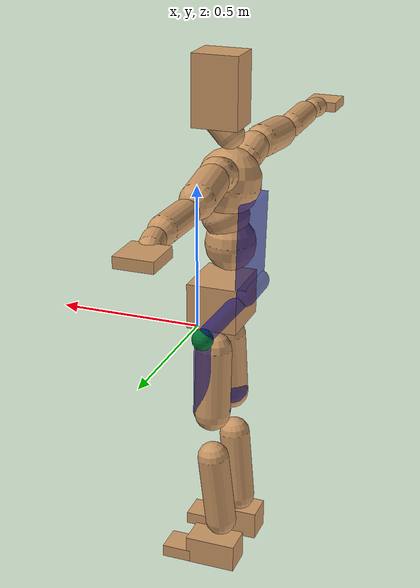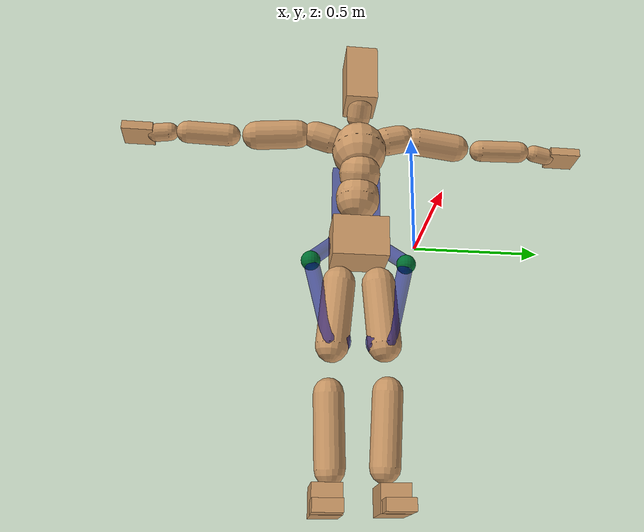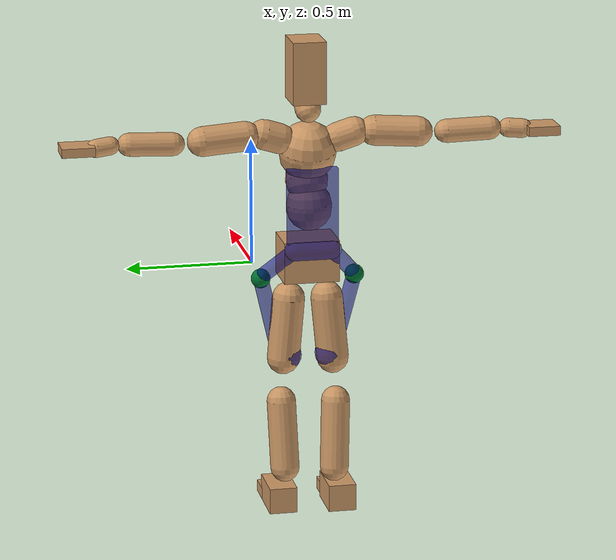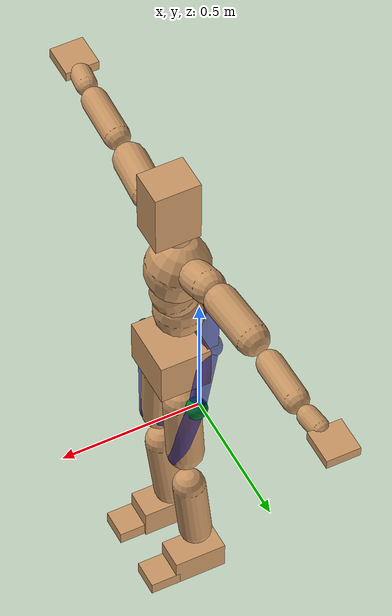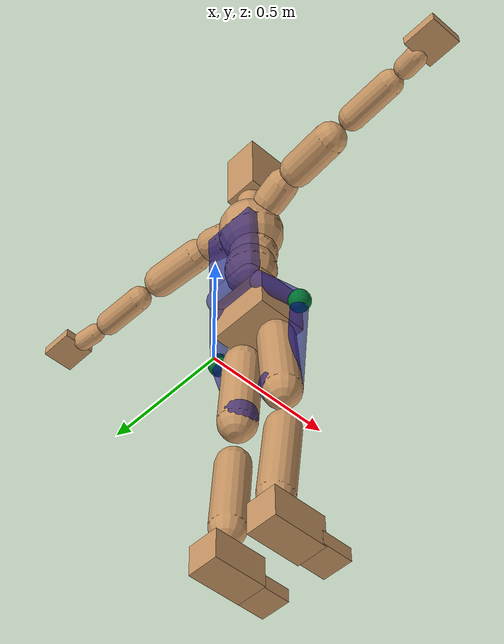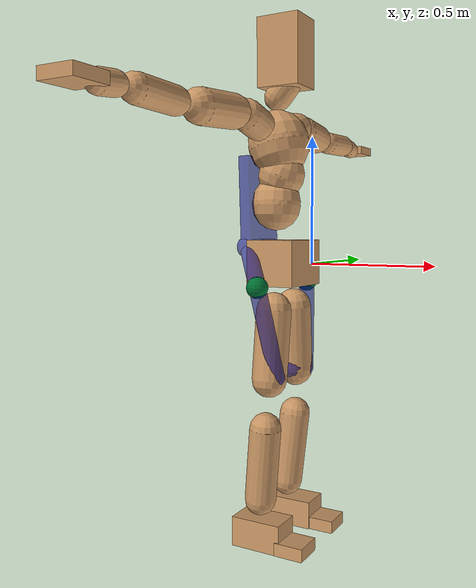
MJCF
<mujoco model="humanoid">
  <compiler coordinate="local" />
  <asset>
    <texture type="skybox" builtin="gradient" rgb1=".4 .5 .6" rgb2="0 0 0" width="100" height="100" />
    <texture builtin="flat" height="1278" mark="cross" markrgb="1 1 1" name="texgeom" random="0.01" rgb1="0.8 0.6 0.4" rgb2="0.8 0.6 0.4" type="cube" width="127" />
    <texture builtin="checker" height="100" name="texplane" rgb1="0 0 0" rgb2="0.8 0.8 0.8" type="2d" width="100" />
    <material name="MatPlane" reflectance="0.5" shininess="1" specular="1" texrepeat="60 60" texture="texplane" />
    <material name="geom" texture="texgeom" texuniform="true" />
  </asset>
  <worldbody>
    <light cutoff="100" diffuse="1 1 1" dir="-0 0 -1.3" directional="true" exponent="1" pos="0 0 1.3" specular=".1 .1 .1" />
    <body name="Pelvis" pos="-0.0018 -0.2233 0.0282">
      <geom type="box" pos="-0.0061 -0.0000 -0.0139" size="0.0919 0.1110 0.0831" quat="1.0000 0.0000 0.0000 0.0000" density="1000" conaffinity="1" condim="3" contype="7" margin="0.001" rgba="0.8 0.6 .4 1" />
      <body name="L_Hip" pos="-0.0041 0.0708 -0.0993">
        <joint name="L_Hip_x" type="hinge" pos="0 0 0" axis="1 0 0" stiffness="800" damping="80" armature="0.02" range="-180.0000 180.0000" limited="true" />
        <joint name="L_Hip_y" type="hinge" pos="0 0 0" axis="0 1 0" stiffness="800" damping="80" armature="0.02" range="-180.0000 180.0000" limited="true" />
        <joint name="L_Hip_z" type="hinge" pos="0 0 0" axis="0 0 1" stiffness="800" damping="80" armature="0.02" range="-180.0000 180.0000" limited="true" />
        <geom type="capsule" contype="1" conaffinity="1" density="2040.816327" fromto="-0.0010 0.0071 -0.0817 -0.0040 0.0284 -0.3271" size="0.0656" condim="3" margin="0.001" rgba="0.8 0.6 .4 1" />
        <body name="L_Knee" pos="-0.0028 0.0419 -0.4154">
          <joint name="L_Knee_x" type="hinge" pos="0 0 0" axis="1 0 0" stiffness="800" damping="80" armature="0.02" range="-180.0000 180.0000" limited="true" />
          <joint name="L_Knee_y" type="hinge" pos="0 0 0" axis="0 1 0" stiffness="800" damping="80" armature="0.02" range="-180.0000 180.0000" limited="true" />
          <joint name="L_Knee_z" type="hinge" pos="0 0 0" axis="0 0 1" stiffness="800" damping="80" armature="0.02" range="-180.0000 180.0000" limited="true" />
          <geom type="capsule" contype="1" conaffinity="1" density="1234.567901" fromto="-0.0095 -0.0029 -0.0904 -0.0384 -0.0116 -0.3616" size="0.0581" condim="3" margin="0.001" rgba="0.8 0.6 .4 1" />
          <body name="L_Ankle" pos="-0.0475 -0.0180 -0.4513">
            <joint name="L_Ankle_x" type="hinge" pos="0 0 0" axis="1 0 0" stiffness="800" damping="80" armature="0.02" range="-180.0000 180.0000" limited="true" />
            <joint name="L_Ankle_y" type="hinge" pos="0 0 0" axis="0 1 0" stiffness="800" damping="80" armature="0.02" range="-180.0000 180.0000" limited="true" />
            <joint name="L_Ankle_z" type="hinge" pos="0 0 0" axis="0 0 1" stiffness="800" damping="80" armature="0.02" range="-180.0000 180.0000" limited="true" />
            <geom type="box" pos="0.0269 0.0267 -0.0267" size="0.0944 0.0554 0.0519" quat="1.0000 0.0000 0.0000 0.0000" density="1000" conaffinity="1" condim="3" contype="7" margin="0.001" rgba="0.8 0.6 .4 1" />
            <body name="L_Toe" pos="0.1338 0.0323 -0.0615">
              <joint name="L_Toe_x" type="hinge" pos="0 0 0" axis="1 0 0" stiffness="500" damping="50" armature="0.02" range="-5.0000 5.0000" limited="true" />
              <joint name="L_Toe_y" type="hinge" pos="0 0 0" axis="0 1 0" stiffness="500" damping="50" armature="0.02" range="-5.0000 5.0000" limited="true" />
              <joint name="L_Toe_z" type="hinge" pos="0 0 0" axis="0 0 1" stiffness="500" damping="50" armature="0.02" range="-5.0000 5.0000" limited="true" />
              <geom type="box" pos="0.0275 -0.0033 0.0063" size="0.0550 0.0532 0.0228" quat="1.0000 0.0000 0.0000 0.0000" density="1000" conaffinity="1" condim="3" contype="7" margin="0.001" rgba="0.8 0.6 .4 1" />
            </body>
          </body>
        </body>
        <geom name="left_hip_motor" type="sphere" size="0.0385" pos="-0.000469 0.118289 0.005255" mass="0.53" contype="0" conaffinity="0" rgba="0.0 0.45 0.2 1" />
        <geom name="left_thigh_box" type="capsule" fromto="0.002551 0.111331 -0.023770 0.033895 0.039115 -0.325029" size="0.030" mass="0.1977" contype="0" conaffinity="0" rgba="0.0 0.0 0.55 0.55" />
        <geom name="left_hip_ring" type="sphere" pos="-0.007284 0.017379 -0.315218" size="0.061500" mass="0.0923" contype="0" conaffinity="0" rgba="0.0 0.0 0.55 0.55" />
      </body>
      <body name="R_Hip" pos="-0.0026 -0.0695 -0.0980">
        <joint name="R_Hip_x" type="hinge" pos="0 0 0" axis="1 0 0" stiffness="800" damping="80" armature="0.02" range="-180.0000 180.0000" limited="true" />
        <joint name="R_Hip_y" type="hinge" pos="0 0 0" axis="0 1 0" stiffness="800" damping="80" armature="0.02" range="-180.0000 180.0000" limited="true" />
        <joint name="R_Hip_z" type="hinge" pos="0 0 0" axis="0 0 1" stiffness="800" damping="80" armature="0.02" range="-180.0000 180.0000" limited="true" />
        <geom type="capsule" contype="1" conaffinity="1" density="2040.816327" fromto="-0.0019 -0.0079 -0.0842 -0.0077 -0.0315 -0.3368" size="0.0640" condim="3" margin="0.001" rgba="0.8 0.6 .4 1" />
        <body name="R_Knee" pos="-0.0104 -0.0446 -0.4254">
          <joint name="R_Knee_x" type="hinge" pos="0 0 0" axis="1 0 0" stiffness="800" damping="80" armature="0.02" range="-180.0000 180.0000" limited="true" />
          <joint name="R_Knee_y" type="hinge" pos="0 0 0" axis="0 1 0" stiffness="800" damping="80" armature="0.02" range="-180.0000 180.0000" limited="true" />
          <joint name="R_Knee_z" type="hinge" pos="0 0 0" axis="0 0 1" stiffness="800" damping="80" armature="0.02" range="-180.0000 180.0000" limited="true" />
          <geom type="capsule" contype="1" conaffinity="1" density="1234.567901" fromto="-0.0092 0.0034 -0.0907 -0.0365 0.0135 -0.3625" size="0.0578" condim="3" margin="0.001" rgba="0.8 0.6 .4 1" />
          <body name="R_Ankle" pos="-0.0463 0.0198 -0.4526">
            <joint name="R_Ankle_x" type="hinge" pos="0 0 0" axis="1 0 0" stiffness="800" damping="80" armature="0.02" range="-180.0000 180.0000" limited="true" />
            <joint name="R_Ankle_y" type="hinge" pos="0 0 0" axis="0 1 0" stiffness="800" damping="80" armature="0.02" range="-180.0000 180.0000" limited="true" />
            <joint name="R_Ankle_z" type="hinge" pos="0 0 0" axis="0 0 1" stiffness="800" damping="80" armature="0.02" range="-180.0000 180.0000" limited="true" />
            <geom type="box" pos="0.0286 -0.0243 -0.0197" size="0.0966 0.0553 0.0542" quat="1.0000 0.0000 0.0000 0.0000" density="1000" conaffinity="1" condim="3" contype="7" margin="0.001" rgba="0.8 0.6 .4 1" />
            <body name="R_Toe" pos="0.1390 -0.0340 -0.0544">
              <joint name="R_Toe_x" type="hinge" pos="0 0 0" axis="1 0 0" stiffness="500" damping="50" armature="0.02" range="-5.0000 5.0000" limited="true" />
              <joint name="R_Toe_y" type="hinge" pos="0 0 0" axis="0 1 0" stiffness="500" damping="50" armature="0.02" range="-5.0000 5.0000" limited="true" />
              <joint name="R_Toe_z" type="hinge" pos="0 0 0" axis="0 0 1" stiffness="500" damping="50" armature="0.02" range="-5.0000 5.0000" limited="true" />
              <geom type="box" pos="0.0253 0.0047 0.0049" size="0.0550 0.0535 0.0235" quat="1.0000 0.0000 0.0000 0.0000" density="1000" conaffinity="1" condim="3" contype="7" margin="0.001" rgba="0.8 0.6 .4 1" />
            </body>
          </body>
        </body>
        <geom name="right_hip_motor" type="sphere" size="0.0385" pos="-0.005199 -0.119211 0.003827" mass="0.53" contype="0" conaffinity="0" rgba="0.0 0.45 0.2 1" />
        <geom name="right_thigh_box" type="capsule" fromto="-0.002132 -0.112377 -0.025223 0.029619 -0.041620 -0.325993" size="0.030" mass="0.1977" contype="0" conaffinity="0" rgba="0.0 0.0 0.55 0.55" />
        <geom name="right_hip_ring" type="sphere" pos="-0.013104 -0.018825 -0.316393" size="0.060600" mass="0.0923" contype="0" conaffinity="0" rgba="0.0 0.0 0.55 0.55" />
      </body>
      <body name="Torso" pos="-0.0375 -0.0027 0.1244">
        <joint name="Torso_x" type="hinge" pos="0 0 0" axis="1 0 0" stiffness="1000" damping="100" armature="0.02" range="-180.0000 180.0000" limited="true" />
        <joint name="Torso_y" type="hinge" pos="0 0 0" axis="0 1 0" stiffness="1000" damping="100" armature="0.02" range="-180.0000 180.0000" limited="true" />
        <joint name="Torso_z" type="hinge" pos="0 0 0" axis="0 0 1" stiffness="1000" damping="100" armature="0.02" range="-180.0000 180.0000" limited="true" />
        <geom type="capsule" contype="1" conaffinity="1" density="2040.816327" fromto="0.0006 0.0029 0.0701 0.0007 0.0035 0.0857" size="0.0898" condim="3" margin="0.001" rgba="0.8 0.6 .4 1" />
        <body name="Spine" pos="0.0045 0.0086 0.1523">
          <joint name="Spine_x" type="hinge" pos="0 0 0" axis="1 0 0" stiffness="1000" damping="100" armature="0.02" range="-180.0000 180.0000" limited="true" />
          <joint name="Spine_y" type="hinge" pos="0 0 0" axis="0 1 0" stiffness="1000" damping="100" armature="0.02" range="-180.0000 180.0000" limited="true" />
          <joint name="Spine_z" type="hinge" pos="0 0 0" axis="0 0 1" stiffness="1000" damping="100" armature="0.02" range="-180.0000 180.0000" limited="true" />
          <geom type="capsule" contype="1" conaffinity="1" density="2040.816327" fromto="0.0132 0.0008 0.0277 0.0162 0.0009 0.0339" size="0.0849" condim="3" margin="0.001" rgba="0.8 0.6 .4 1" />
          <body name="Chest" pos="0.0238 0.0004 0.0616">
            <joint name="Chest_x" type="hinge" pos="0 0 0" axis="1 0 0" stiffness="1000" damping="100" armature="0.02" range="-180.0000 180.0000" limited="true" />
            <joint name="Chest_y" type="hinge" pos="0 0 0" axis="0 1 0" stiffness="1000" damping="100" armature="0.02" range="-180.0000 180.0000" limited="true" />
            <joint name="Chest_z" type="hinge" pos="0 0 0" axis="0 0 1" stiffness="1000" damping="100" armature="0.02" range="-180.0000 180.0000" limited="true" />
            <geom type="capsule" contype="1" conaffinity="1" density="2040.816327" fromto="-0.0186 -0.0010 0.0762 -0.0228 -0.0011 0.0931" size="0.1126" condim="3" margin="0.001" rgba="0.8 0.6 .4 1" />
            <body name="Neck" pos="-0.0339 -0.0039 0.2368">
              <joint name="Neck_x" type="hinge" pos="0 0 0" axis="1 0 0" stiffness="500" damping="50" armature="0.02" range="-180.0000 180.0000" limited="true" />
              <joint name="Neck_y" type="hinge" pos="0 0 0" axis="0 1 0" stiffness="500" damping="50" armature="0.02" range="-180.0000 180.0000" limited="true" />
              <joint name="Neck_z" type="hinge" pos="0 0 0" axis="0 0 1" stiffness="500" damping="50" armature="0.02" range="-180.0000 180.0000" limited="true" />
              <geom type="capsule" contype="1" conaffinity="1" density="1000" fromto="0.0120 0.0011 0.0140 0.0477 0.0047 0.0560" size="0.0506" condim="3" margin="0.001" rgba="0.8 0.6 .4 1" />
              <body name="Head" pos="0.0558 0.0076 0.0719">
                <joint name="Head_x" type="hinge" pos="0 0 0" axis="1 0 0" stiffness="500" damping="50" armature="0.02" range="-180.0000 180.0000" limited="true" />
                <joint name="Head_y" type="hinge" pos="0 0 0" axis="0 1 0" stiffness="500" damping="50" armature="0.02" range="-180.0000 180.0000" limited="true" />
                <joint name="Head_z" type="hinge" pos="0 0 0" axis="0 0 1" stiffness="500" damping="50" armature="0.02" range="-180.0000 180.0000" limited="true" />
                <geom type="box" pos="-0.0125 -0.0046 0.0942" size="0.0820 0.0660 0.1241" quat="1.0000 0.0000 0.0000 0.0000" density="1000" conaffinity="1" condim="3" contype="7" margin="0.001" rgba="0.8 0.6 .4 1" />
              </body>
            </body>
            <body name="L_Thorax" pos="-0.0317 0.0889 0.1356">
              <joint name="L_Thorax_x" type="hinge" pos="0 0 0" axis="1 0 0" stiffness="500" damping="50" armature="0.02" range="-180.0000 180.0000" limited="true" />
              <joint name="L_Thorax_y" type="hinge" pos="0 0 0" axis="0 1 0" stiffness="500" damping="50" armature="0.02" range="-180.0000 180.0000" limited="true" />
              <joint name="L_Thorax_z" type="hinge" pos="0 0 0" axis="0 0 1" stiffness="500" damping="50" armature="0.02" range="-180.0000 180.0000" limited="true" />
              <geom type="capsule" contype="1" conaffinity="1" density="1000" fromto="-0.0021 0.0220 0.0071 -0.0081 0.0880 0.0283" size="0.0597" condim="3" margin="0.001" rgba="0.8 0.6 .4 1" />
              <body name="L_Shoulder" pos="-0.0123 0.1035 0.0306">
                <joint name="L_Shoulder_x" type="hinge" pos="0 0 0" axis="1 0 0" stiffness="500" damping="50" armature="0.02" range="-180.0000 180.0000" limited="true" />
                <joint name="L_Shoulder_y" type="hinge" pos="0 0 0" axis="0 1 0" stiffness="500" damping="50" armature="0.02" range="-180.0000 180.0000" limited="true" />
                <joint name="L_Shoulder_z" type="hinge" pos="0 0 0" axis="0 0 1" stiffness="500" damping="50" armature="0.02" range="-180.0000 180.0000" limited="true" />
                <geom type="capsule" contype="1" conaffinity="1" density="1000" fromto="-0.0065 0.0580 -0.0029 -0.0260 0.2321 -0.0115" size="0.0587" condim="3" margin="0.001" rgba="0.8 0.6 .4 1" />
                <body name="L_Elbow" pos="-0.0301 0.2899 -0.0167">
                  <joint name="L_Elbow_x" type="hinge" pos="0 0 0" axis="1 0 0" stiffness="500" damping="50" armature="0.02" range="-180.0000 180.0000" limited="true" />
                  <joint name="L_Elbow_y" type="hinge" pos="0 0 0" axis="0 1 0" stiffness="500" damping="50" armature="0.02" range="-180.0000 180.0000" limited="true" />
                  <joint name="L_Elbow_z" type="hinge" pos="0 0 0" axis="0 0 1" stiffness="500" damping="50" armature="0.02" range="-180.0000 180.0000" limited="true" />
                  <geom type="capsule" contype="1" conaffinity="1" density="1000" fromto="-0.0002 0.0569 0.0020 -0.0010 0.2278 0.0082" size="0.0459" condim="3" margin="0.001" rgba="0.8 0.6 .4 1" />
                  <body name="L_Wrist" pos="-0.0022 0.2830 0.0104">
                    <joint name="L_Wrist_x" type="hinge" pos="0 0 0" axis="1 0 0" stiffness="300" damping="30" armature="0.02" range="-180.0000 180.0000" limited="true" />
                    <joint name="L_Wrist_y" type="hinge" pos="0 0 0" axis="0 1 0" stiffness="300" damping="30" armature="0.02" range="-180.0000 180.0000" limited="true" />
                    <joint name="L_Wrist_z" type="hinge" pos="0 0 0" axis="0 0 1" stiffness="300" damping="30" armature="0.02" range="-180.0000 180.0000" limited="true" />
                    <geom type="capsule" contype="1" conaffinity="1" density="1000" fromto="-0.0035 0.0189 -0.0018 -0.0139 0.0757 -0.0073" size="0.0362" condim="3" margin="0.001" rgba="0.8 0.6 .4 1" />
                    <body name="L_Hand" pos="-0.0186 0.0957 -0.0062">
                      <joint name="L_Hand_x" type="hinge" pos="0 0 0" axis="1 0 0" stiffness="300" damping="30" armature="0.02" range="-5.0000 5.0000" limited="true" />
                      <joint name="L_Hand_y" type="hinge" pos="0 0 0" axis="0 1 0" stiffness="300" damping="30" armature="0.02" range="-5.0000 5.0000" limited="true" />
                      <joint name="L_Hand_z" type="hinge" pos="0 0 0" axis="0 0 1" stiffness="300" damping="30" armature="0.02" range="-5.0000 5.0000" limited="true" />
                      <geom type="box" pos="-0.0065 0.0547 0.0011" size="0.0607 0.0649 0.0176" quat="1.0000 0.0000 0.0000 0.0000" density="1000" conaffinity="1" condim="3" contype="7" margin="0.001" rgba="0.8 0.6 .4 1" />
                    </body>
                  </body>
                </body>
              </body>
            </body>
            <body name="R_Thorax" pos="-0.0358 -0.0935 0.1312">
              <joint name="R_Thorax_x" type="hinge" pos="0 0 0" axis="1 0 0" stiffness="500" damping="50" armature="0.02" range="-180.0000 180.0000" limited="true" />
              <joint name="R_Thorax_y" type="hinge" pos="0 0 0" axis="0 1 0" stiffness="500" damping="50" armature="0.02" range="-180.0000 180.0000" limited="true" />
              <joint name="R_Thorax_z" type="hinge" pos="0 0 0" axis="0 0 1" stiffness="500" damping="50" armature="0.02" range="-180.0000 180.0000" limited="true" />
              <geom type="capsule" contype="1" conaffinity="1" density="1000" fromto="-0.0020 -0.0223 0.0076 -0.0082 -0.0891 0.0302" size="0.0577" condim="3" margin="0.001" rgba="0.8 0.6 .4 1" />
              <body name="R_Shoulder" pos="-0.0083 -0.1108 0.0345">
                <joint name="R_Shoulder_x" type="hinge" pos="0 0 0" axis="1 0 0" stiffness="500" damping="50" armature="0.02" range="-180.0000 180.0000" limited="true" />
                <joint name="R_Shoulder_y" type="hinge" pos="0 0 0" axis="0 1 0" stiffness="500" damping="50" armature="0.02" range="-180.0000 180.0000" limited="true" />
                <joint name="R_Shoulder_z" type="hinge" pos="0 0 0" axis="0 0 1" stiffness="500" damping="50" armature="0.02" range="-180.0000 180.0000" limited="true" />
                <geom type="capsule" contype="1" conaffinity="1" density="1000" fromto="-0.0050 -0.0568 -0.0031 -0.0197 -0.2276 -0.0122" size="0.0600" condim="3" margin="0.001" rgba="0.8 0.6 .4 1" />
                <body name="R_Elbow" pos="-0.0260 -0.2834 -0.0161">
                  <joint name="R_Elbow_x" type="hinge" pos="0 0 0" axis="1 0 0" stiffness="500" damping="50" armature="0.02" range="-180.0000 180.0000" limited="true" />
                  <joint name="R_Elbow_y" type="hinge" pos="0 0 0" axis="0 1 0" stiffness="500" damping="50" armature="0.02" range="-180.0000 180.0000" limited="true" />
                  <joint name="R_Elbow_z" type="hinge" pos="0 0 0" axis="0 0 1" stiffness="500" damping="50" armature="0.02" range="-180.0000 180.0000" limited="true" />
                  <geom type="capsule" contype="1" conaffinity="1" density="1000" fromto="-0.0013 -0.0580 0.0018 -0.0050 -0.2317 0.0070" size="0.0466" condim="3" margin="0.001" rgba="0.8 0.6 .4 1" />
                  <body name="R_Wrist" pos="-0.0087 -0.2876 0.0076">
                    <joint name="R_Wrist_x" type="hinge" pos="0 0 0" axis="1 0 0" stiffness="300" damping="30" armature="0.02" range="-180.0000 180.0000" limited="true" />
                    <joint name="R_Wrist_y" type="hinge" pos="0 0 0" axis="0 1 0" stiffness="300" damping="30" armature="0.02" range="-180.0000 180.0000" limited="true" />
                    <joint name="R_Wrist_z" type="hinge" pos="0 0 0" axis="0 0 1" stiffness="300" damping="30" armature="0.02" range="-180.0000 180.0000" limited="true" />
                    <geom type="capsule" contype="1" conaffinity="1" density="1000" fromto="-0.0025 -0.0187 -0.0013 -0.0097 -0.0750 -0.0054" size="0.0379" condim="3" margin="0.001" rgba="0.8 0.6 .4 1" />
                    <body name="R_Hand" pos="-0.0108 -0.0962 -0.0047">
                      <joint name="R_Hand_x" type="hinge" pos="0 0 0" axis="1 0 0" stiffness="300" damping="30" armature="0.02" range="-5.0000 5.0000" limited="true" />
                      <joint name="R_Hand_y" type="hinge" pos="0 0 0" axis="0 1 0" stiffness="300" damping="30" armature="0.02" range="-5.0000 5.0000" limited="true" />
                      <joint name="R_Hand_z" type="hinge" pos="0 0 0" axis="0 0 1" stiffness="300" damping="30" armature="0.02" range="-5.0000 5.0000" limited="true" />
                      <geom type="box" pos="-0.0089 -0.0514 -0.0010" size="0.0618 0.0633 0.0185" quat="1.0000 0.0000 0.0000 0.0000" density="1000" conaffinity="1" condim="3" contype="7" margin="0.001" rgba="0.8 0.6 .4 1" />
                    </body>
                  </body>
                </body>
              </body>
            </body>
          </body>
        </body>
      </body>
      <joint type="free" name="Pelvis" limited="false" actuatorfrclimited="false" />
      <geom name="waist_hip_bar" type="capsule" fromto="-0.1166 -0.074 0.0436 -0.1166 0.074 0.0436" size="0.040" mass="0.9389" contype="0" conaffinity="0" rgba="0.0 0.0 0.55 0.55" />
      <geom name="waist_hip_arm_l" type="capsule" fromto="-0.007269 0.187789 -0.086145 -0.116600 0.074000 0.043600" size="0.030" mass="0.3756" contype="0" conaffinity="0" rgba="0.0 0.0 0.55 0.55" />
      <geom name="waist_hip_arm_r" type="capsule" fromto="-0.009499 -0.186911 -0.086673 -0.116600 -0.074000 0.043600" size="0.030" mass="0.3756" contype="0" conaffinity="0" rgba="0.0 0.0 0.55 0.55" />
      <geom name="exo_main_col" type="box" size="0.020000 0.100000 0.160452" pos="-0.114674 0.002139 0.212481" quat="0.99987008 -0.00439565 -0.01550794 -0.00006818" mass="1.37" contype="0" conaffinity="0" rgba="0.0 0.0 0.55 0.55" />
    </body>
  </worldbody>
  <actuator>
    <motor name="L_Hip_x" joint="L_Hip_x" gear="500" />
    <motor name="L_Hip_y" joint="L_Hip_y" gear="500" />
    <motor name="L_Hip_z" joint="L_Hip_z" gear="500" />
    <motor name="L_Knee_x" joint="L_Knee_x" gear="500" />
    <motor name="L_Knee_y" joint="L_Knee_y" gear="500" />
    <motor name="L_Knee_z" joint="L_Knee_z" gear="500" />
    <motor name="L_Ankle_x" joint="L_Ankle_x" gear="500" />
    <motor name="L_Ankle_y" joint="L_Ankle_y" gear="500" />
    <motor name="L_Ankle_z" joint="L_Ankle_z" gear="500" />
    <motor name="L_Toe_x" joint="L_Toe_x" gear="500" />
    <motor name="L_Toe_y" joint="L_Toe_y" gear="500" />
    <motor name="L_Toe_z" joint="L_Toe_z" gear="500" />
    <motor name="R_Hip_x" joint="R_Hip_x" gear="500" />
    <motor name="R_Hip_y" joint="R_Hip_y" gear="500" />
    <motor name="R_Hip_z" joint="R_Hip_z" gear="500" />
    <motor name="R_Knee_x" joint="R_Knee_x" gear="500" />
    <motor name="R_Knee_y" joint="R_Knee_y" gear="500" />
    <motor name="R_Knee_z" joint="R_Knee_z" gear="500" />
    <motor name="R_Ankle_x" joint="R_Ankle_x" gear="500" />
    <motor name="R_Ankle_y" joint="R_Ankle_y" gear="500" />
    <motor name="R_Ankle_z" joint="R_Ankle_z" gear="500" />
    <motor name="R_Toe_x" joint="R_Toe_x" gear="500" />
    <motor name="R_Toe_y" joint="R_Toe_y" gear="500" />
    <motor name="R_Toe_z" joint="R_Toe_z" gear="500" />
    <motor name="Torso_x" joint="Torso_x" gear="500" />
    <motor name="Torso_y" joint="Torso_y" gear="500" />
    <motor name="Torso_z" joint="Torso_z" gear="500" />
    <motor name="Spine_x" joint="Spine_x" gear="500" />
    <motor name="Spine_y" joint="Spine_y" gear="500" />
    <motor name="Spine_z" joint="Spine_z" gear="500" />
    <motor name="Chest_x" joint="Chest_x" gear="500" />
    <motor name="Chest_y" joint="Chest_y" gear="500" />
    <motor name="Chest_z" joint="Chest_z" gear="500" />
    <motor name="Neck_x" joint="Neck_x" gear="500" />
    <motor name="Neck_y" joint="Neck_y" gear="500" />
    <motor name="Neck_z" joint="Neck_z" gear="500" />
    <motor name="Head_x" joint="Head_x" gear="500" />
    <motor name="Head_y" joint="Head_y" gear="500" />
    <motor name="Head_z" joint="Head_z" gear="500" />
    <motor name="L_Thorax_x" joint="L_Thorax_x" gear="500" />
    <motor name="L_Thorax_y" joint="L_Thorax_y" gear="500" />
    <motor name="L_Thorax_z" joint="L_Thorax_z" gear="500" />
    <motor name="L_Shoulder_x" joint="L_Shoulder_x" gear="500" />
    <motor name="L_Shoulder_y" joint="L_Shoulder_y" gear="500" />
    <motor name="L_Shoulder_z" joint="L_Shoulder_z" gear="500" />
    <motor name="L_Elbow_x" joint="L_Elbow_x" gear="500" />
    <motor name="L_Elbow_y" joint="L_Elbow_y" gear="500" />
    <motor name="L_Elbow_z" joint="L_Elbow_z" gear="500" />
    <motor name="L_Wrist_x" joint="L_Wrist_x" gear="500" />
    <motor name="L_Wrist_y" joint="L_Wrist_y" gear="500" />
    <motor name="L_Wrist_z" joint="L_Wrist_z" gear="500" />
    <motor name="L_Hand_x" joint="L_Hand_x" gear="500" />
    <motor name="L_Hand_y" joint="L_Hand_y" gear="500" />
    <motor name="L_Hand_z" joint="L_Hand_z" gear="500" />
    <motor name="R_Thorax_x" joint="R_Thorax_x" gear="500" />
    <motor name="R_Thorax_y" joint="R_Thorax_y" gear="500" />
    <motor name="R_Thorax_z" joint="R_Thorax_z" gear="500" />
    <motor name="R_Shoulder_x" joint="R_Shoulder_x" gear="500" />
    <motor name="R_Shoulder_y" joint="R_Shoulder_y" gear="500" />
    <motor name="R_Shoulder_z" joint="R_Shoulder_z" gear="500" />
    <motor name="R_Elbow_x" joint="R_Elbow_x" gear="500" />
    <motor name="R_Elbow_y" joint="R_Elbow_y" gear="500" />
    <motor name="R_Elbow_z" joint="R_Elbow_z" gear="500" />
    <motor name="R_Wrist_x" joint="R_Wrist_x" gear="500" />
    <motor name="R_Wrist_y" joint="R_Wrist_y" gear="500" />
    <motor name="R_Wrist_z" joint="R_Wrist_z" gear="500" />
    <motor name="R_Hand_x" joint="R_Hand_x" gear="500" />
    <motor name="R_Hand_y" joint="R_Hand_y" gear="500" />
    <motor name="R_Hand_z" joint="R_Hand_z" gear="500" />
    <motor name="exo_hip_l" joint="L_Hip_y" gear="23.7" ctrllimited="true" ctrlrange="-1 1" />
    <motor name="exo_hip_r" joint="R_Hip_y" gear="23.7" ctrllimited="true" ctrlrange="-1 1" />
  </actuator>
  <contact>
    <exclude body1="Torso" body2="Chest" />
    <exclude body1="Head" body2="Chest" />
    <exclude body1="R_Knee" body2="R_Toe" />
    <exclude body1="R_Knee" body2="L_Ankle" />
    <exclude body1="R_Knee" body2="L_Toe" />
    <exclude body1="L_Knee" body2="L_Toe" />
    <exclude body1="L_Knee" body2="R_Ankle" />
    <exclude body1="L_Knee" body2="R_Toe" />
    <exclude body1="L_Shoulder" body2="Chest" />
    <exclude body1="R_Shoulder" body2="Chest" />
  </contact>
  <sensor />
  <size njmax="700" nconmax="700" />
</mujoco>
